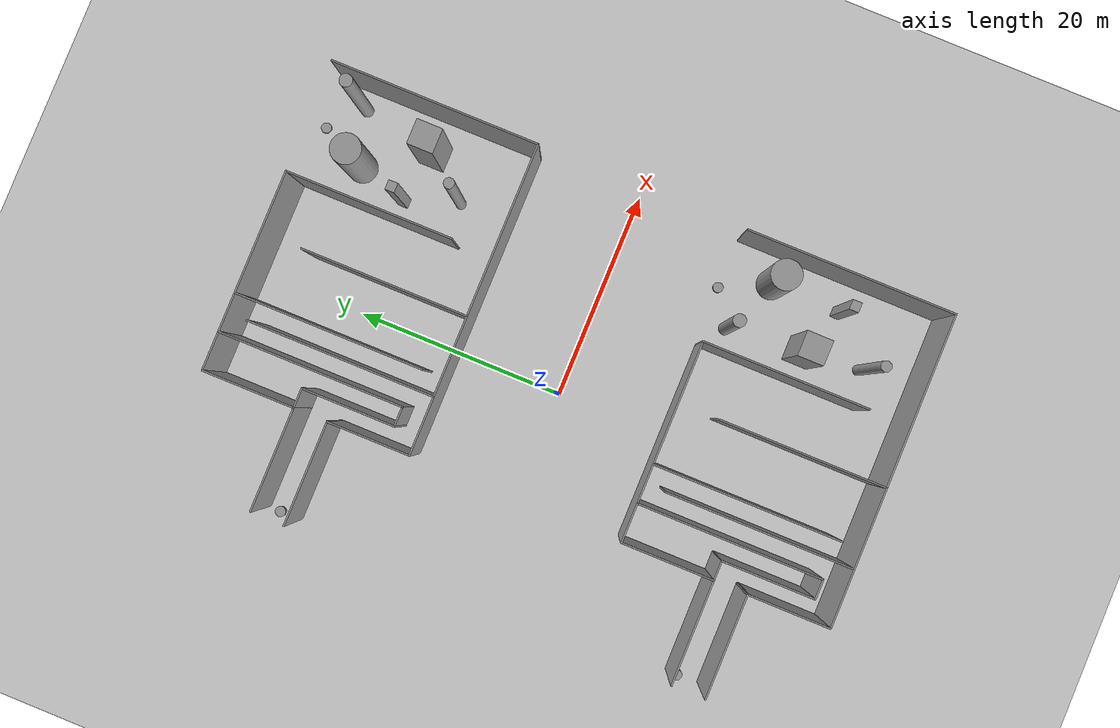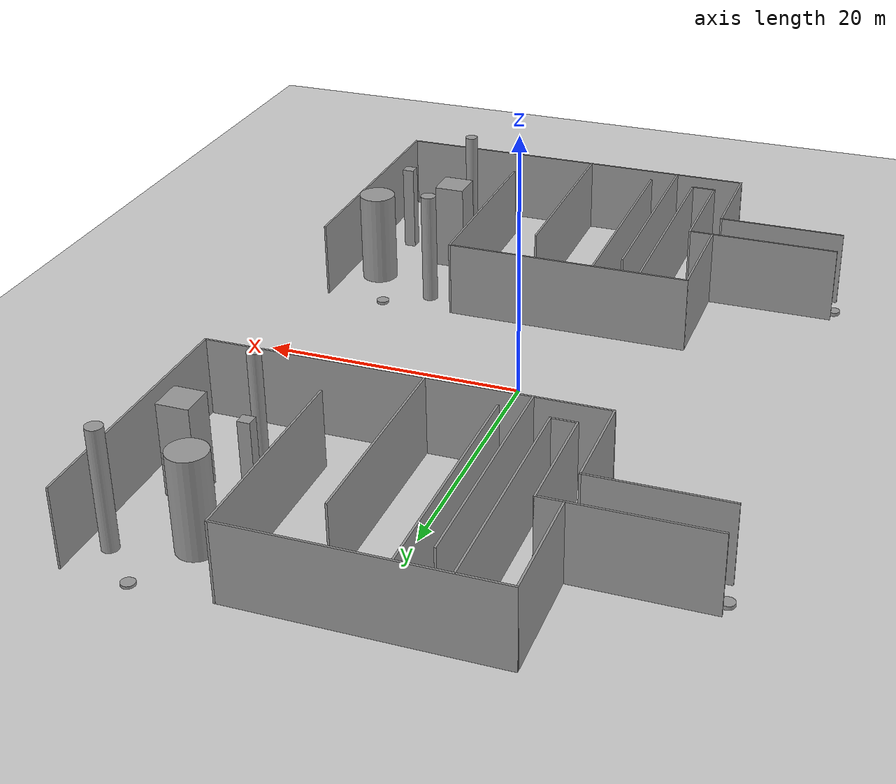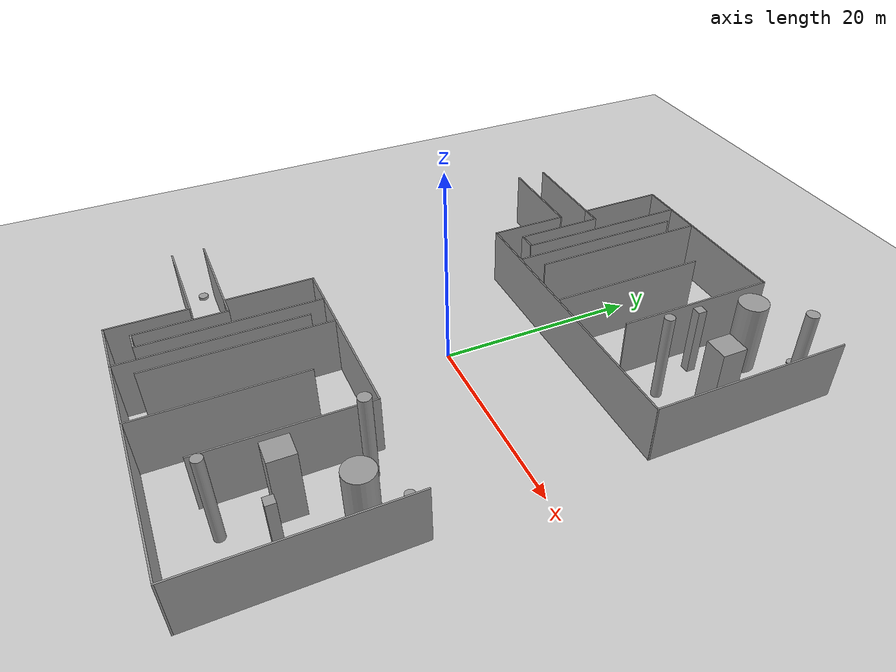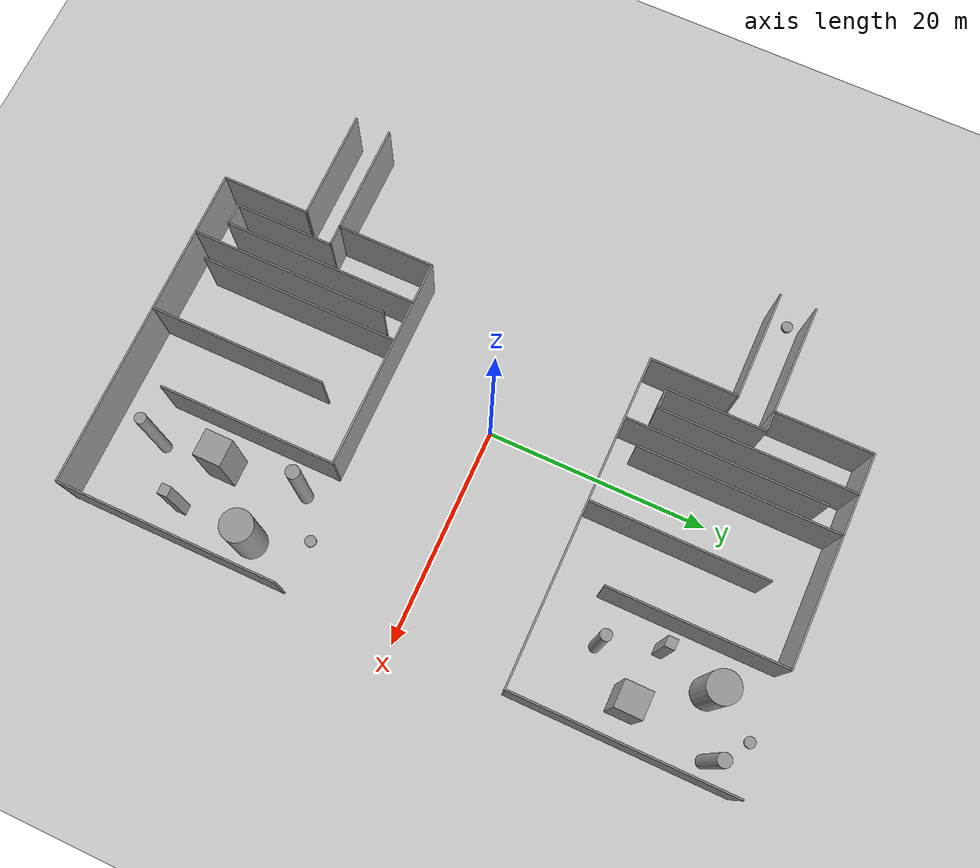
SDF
<sdf version="1.6">
 <world name="default">
  <light name="sun" type="directional">
   <pose>0 0 10 0 -0 0</pose>
   <diffuse>0.8 0.8 0.8 1</diffuse>
   <specular>0.2 0.2 0.2 1</specular>
   <attenuation>
    <range>1000</range>
    <constant>0.9</constant>
    <linear>0.01</linear>
    <quadratic>0.001</quadratic>
   </attenuation>
   <direction>-0.5 0.1 -0.9</direction>
  </light>
  <model name="ground_plane">
   <static>1</static>
   <link name="link">
    <collision name="collision">
     <geometry><plane><normal>0 0 1</normal><size>100 100</size></plane></geometry>
     <surface>
      <contact><collide_bitmask>65535</collide_bitmask></contact>
      <friction><ode><mu>100</mu><mu2>50</mu2></ode></friction>
     </surface>
    </collision>
    <visual name="visual">
     <cast_shadows>0</cast_shadows>
     <geometry><plane><normal>0 0 1</normal><size>100 100</size></plane></geometry>
     <material>
      <script><uri>file://media/materials/scripts/gazebo.material</uri><name>Gazebo/Grey</name></script>
     </material>
    </visual>
   </link>
  </model>
  <gravity>0 0 -9.8</gravity>
  <magnetic_field>6e-06 2.3e-05 -4.2e-05</magnetic_field>
  <atmosphere type="adiabatic"/>
  <physics name="default_physics" default="0" type="ode">
   <max_step_size>0.001</max_step_size>
   <real_time_factor>1</real_time_factor>
   <real_time_update_rate>1000</real_time_update_rate>
  </physics>
  <scene><ambient>0.4 0.4 0.4 1</ambient><background>0.7 0.7 0.7 1</background><shadows>1</shadows></scene>
  <spherical_coordinates>
   <surface_model>EARTH_WGS84</surface_model>
   <latitude_deg>0</latitude_deg>
   <longitude_deg>0</longitude_deg>
   <elevation>0</elevation>
   <heading_deg>0</heading_deg>
  </spherical_coordinates>
  <model name="train_1_1_clone">
   <pose>0 -20 0 0 -0 0</pose>
   <link name="Wall_58">
    <collision name="Wall_58_Collision">
     <geometry><box><size>10 0.15 6</size></box></geometry>
     <pose>0 0 3 0 -0 0</pose>
    </collision>
    <visual name="Wall_58_Visual">
     <pose>0 0 3 0 -0 0</pose>
     <geometry><box><size>10 0.15 6</size></box></geometry>
     <material>
      <script><uri>file://media/materials/scripts/gazebo.material</uri><name>Gazebo/Grey</name></script>
      <ambient>1 1 1 1</ambient>
     </material>
     <meta><layer>0</layer></meta>
    </visual>
    <pose>-14.911 1.131 0 0 -0 0</pose>
   </link>
   <link name="Wall_59">
    <collision name="Wall_59_Collision">
     <geometry><box><size>8.90242 0.15 6</size></box></geometry>
     <pose>0 0 3 0 -0 0</pose>
    </collision>
    <visual name="Wall_59_Visual">
     <pose>0 0 3 0 -0 0</pose>
     <geometry><box><size>8.90242 0.15 6</size></box></geometry>
     <material>
      <script><uri>file://media/materials/scripts/gazebo.material</uri><name>Gazebo/Grey</name></script>
      <ambient>1 1 1 1</ambient>
     </material>
     <meta><layer>0</layer></meta>
    </visual>
    <pose>-9.993 5.5075 0 0 -0 1.5724</pose>
   </link>
   <link name="Wall_62">
    <collision name="Wall_62_Collision">
     <geometry><box><size>20 0.15 6</size></box></geometry>
     <pose>0 0 3 0 -0 0</pose>
    </collision>
    <visual name="Wall_62_Visual">
     <pose>0 0 3 0 -0 0</pose>
     <geometry><box><size>20 0.15 6</size></box></geometry>
     <material>
      <script><uri>file://media/materials/scripts/gazebo.material</uri><name>Gazebo/Grey</name></script>
      <ambient>1 1 1 1</ambient>
     </material>
     <meta><layer>0</layer></meta>
    </visual>
    <pose>19.85 0 0 0 0 -1.5708</pose>
   </link>
   <link name="Wall_64">
    <collision name="Wall_64_Collision">
     <geometry><box><size>8 0.15 6</size></box></geometry>
     <pose>0 0 3 0 -0 0</pose>
    </collision>
    <visual name="Wall_64_Visual">
     <pose>0 0 3 0 -0 0</pose>
     <geometry><box><size>8 0.15 6</size></box></geometry>
     <material>
      <script><uri>file://media/materials/scripts/gazebo.material</uri><name>Gazebo/Grey</name></script>
      <ambient>1 1 1 1</ambient>
     </material>
     <meta><layer>0</layer></meta>
    </visual>
    <pose>-10 -6 0 0 -0 1.5708</pose>
   </link>
   <link name="Wall_65">
    <collision name="Wall_65_Collision">
     <geometry><box><size>10 0.15 6</size></box></geometry>
     <pose>0 0 3 0 -0 0</pose>
    </collision>
    <visual name="Wall_65_Visual">
     <pose>0 0 3 0 -0 0</pose>
     <geometry><box><size>10 0.15 6</size></box></geometry>
     <material>
      <script><uri>file://media/materials/scripts/gazebo.material</uri><name>Gazebo/Grey</name></script>
      <ambient>1 1 1 1</ambient>
     </material>
     <meta><layer>0</layer></meta>
    </visual>
    <pose>-14.925 -2.075 0 0 -0 3.14159</pose>
   </link>
   <link name="Wall_67">
    <collision name="Wall_67_Collision">
     <geometry><box><size>30 0.15 6</size></box></geometry>
     <pose>0 0 3 0 -0 0</pose>
    </collision>
    <visual name="Wall_67_Visual">
     <pose>0 0 3 0 -0 0</pose>
     <geometry><box><size>30 0.15 6</size></box></geometry>
     <material>
      <script><uri>file://media/materials/scripts/gazebo.material</uri><name>Gazebo/Grey</name></script>
      <ambient>1 1 1 1</ambient>
     </material>
     <meta><layer>0</layer></meta>
    </visual>
    <pose>4.925 -9.925 0 0 -0 0</pose>
   </link>
   <link name="Wall_70">
    <collision name="Wall_70_Collision">
     <geometry><box><size>2 0.15 6</size></box></geometry>
     <pose>0 0 3 0 -0 0</pose>
    </collision>
    <visual name="Wall_70_Visual">
     <pose>0 0 3 0 -0 0</pose>
     <geometry><box><size>2 0.15 6</size></box></geometry>
     <material>
      <script><uri>file://media/materials/scripts/gazebo.material</uri><name>Gazebo/Grey</name></script>
      <ambient>1 1 1 1</ambient>
     </material>
     <meta><layer>0</layer></meta>
    </visual>
    <pose>-9.061 1.131 0 0 -0 0</pose>
   </link>
   <link name="Wall_71">
    <collision name="Wall_71_Collision">
     <geometry><box><size>9 0.15 6</size></box></geometry>
     <pose>0 0 3 0 -0 0</pose>
    </collision>
    <visual name="Wall_71_Visual">
     <pose>0 0 3 0 -0 0</pose>
     <geometry><box><size>9 0.15 6</size></box></geometry>
     <material>
      <script><uri>file://media/materials/scripts/gazebo.material</uri><name>Gazebo/Grey</name></script>
      <ambient>1 1 1 1</ambient>
     </material>
     <meta><layer>0</layer></meta>
    </visual>
    <pose>-8.136 -3.294 0 0 0 -1.5708</pose>
   </link>
   <link name="Wall_72">
    <collision name="Wall_72_Collision">
     <geometry><box><size>2 0.15 6</size></box></geometry>
     <pose>0 0 3 0 -0 0</pose>
    </collision>
    <visual name="Wall_72_Visual">
     <pose>0 0 3 0 -0 0</pose>
     <geometry><box><size>2 0.15 6</size></box></geometry>
     <material>
      <script><uri>file://media/materials/scripts/gazebo.material</uri><name>Gazebo/Grey</name></script>
      <ambient>1 1 1 1</ambient>
     </material>
     <meta><layer>0</layer></meta>
    </visual>
    <pose>-7.211 -7.719 0 0 -0 0</pose>
   </link>
   <link name="Wall_73">
    <collision name="Wall_73_Collision">
     <geometry><box><size>17.75 0.15 6</size></box></geometry>
     <pose>0 0 3 0 -0 0</pose>
    </collision>
    <visual name="Wall_73_Visual">
     <pose>0 0 3 0 -0 0</pose>
     <geometry><box><size>17.75 0.15 6</size></box></geometry>
     <material>
      <script><uri>file://media/materials/scripts/gazebo.material</uri><name>Gazebo/Grey</name></script>
      <ambient>1 1 1 1</ambient>
     </material>
     <meta><layer>0</layer></meta>
    </visual>
    <pose>-6.286 1.081 0 0 -0 1.5708</pose>
   </link>
   <link name="Wall_76">
    <collision name="Wall_76_Collision">
     <geometry><box><size>18 0.15 6</size></box></geometry>
     <pose>0 0 3 0 -0 0</pose>
    </collision>
    <visual name="Wall_76_Visual">
     <pose>0 0 3 0 -0 0</pose>
     <geometry><box><size>18 0.15 6</size></box></geometry>
     <material>
      <script><uri>file://media/materials/scripts/gazebo.material</uri><name>Gazebo/Grey</name></script>
      <ambient>1 1 1 1</ambient>
     </material>
     <meta><layer>0</layer></meta>
    </visual>
    <pose>-4.415 -0.983 0 0 0 -1.5708</pose>
   </link>
   <link name="Wall_79">
    <collision name="Wall_79_Collision">
     <geometry><box><size>18 0.15 6</size></box></geometry>
     <pose>0 0 3 0 -0 0</pose>
    </collision>
    <visual name="Wall_79_Visual">
     <pose>0 0 3 0 -0 0</pose>
     <geometry><box><size>18 0.15 6</size></box></geometry>
     <material>
      <script><uri>file://media/materials/scripts/gazebo.material</uri><name>Gazebo/Grey</name></script>
      <ambient>1 1 1 1</ambient>
     </material>
     <meta><layer>0</layer></meta>
    </visual>
    <pose>-2.565 0.867 0 0 -0 1.5708</pose>
   </link>
   <link name="Wall_82">
    <collision name="Wall_82_Collision">
     <geometry><box><size>16 0.15 6</size></box></geometry>
     <pose>0 0 3 0 -0 0</pose>
    </collision>
    <visual name="Wall_82_Visual">
     <pose>0 0 3 0 -0 0</pose>
     <geometry><box><size>16 0.15 6</size></box></geometry>
     <material>
      <script><uri>file://media/materials/scripts/gazebo.material</uri><name>Gazebo/Grey</name></script>
      <ambient>1 1 1 1</ambient>
     </material>
     <meta><layer>0</layer></meta>
    </visual>
    <pose>3.285 -1.983 0 0 0 -1.5708</pose>
   </link>
   <link name="Wall_85">
    <collision name="Wall_85_Collision">
     <geometry><box><size>16 0.15 6</size></box></geometry>
     <pose>0 0 3 0 -0 0</pose>
    </collision>
    <visual name="Wall_85_Visual">
     <pose>0 0 3 0 -0 0</pose>
     <geometry><box><size>16 0.15 6</size></box></geometry>
     <material>
      <script><uri>file://media/materials/scripts/gazebo.material</uri><name>Gazebo/Grey</name></script>
      <ambient>1 1 1 1</ambient>
     </material>
     <meta><layer>0</layer></meta>
    </visual>
    <pose>9.15 1.96 0 0 -0 1.5708</pose>
   </link>
   <link name="Wall_87">
    <collision name="Wall_87_Collision">
     <geometry><box><size>19.25 0.15 6</size></box></geometry>
     <pose>0 0 3 0 -0 0</pose>
    </collision>
    <visual name="Wall_87_Visual">
     <pose>0 0 3 0 -0 0</pose>
     <geometry><box><size>19.25 0.15 6</size></box></geometry>
     <material>
      <script><uri>file://media/materials/scripts/gazebo.material</uri><name>Gazebo/Grey</name></script>
      <ambient>1 1 1 1</ambient>
     </material>
     <meta><layer>0</layer></meta>
    </visual>
    <pose>-0.45 9.884 0 0 -0 0</pose>
   </link>
   <static>1</static>
  </model>
  <model name="train_1_1_clone_clone">
   <pose>0 20 0 0 -0 0</pose>
   <link name="Wall_58">
    <collision name="Wall_58_Collision">
     <geometry><box><size>10 0.15 6</size></box></geometry>
     <pose>0 0 3 0 -0 0</pose>
    </collision>
    <visual name="Wall_58_Visual">
     <pose>0 0 3 0 -0 0</pose>
     <geometry><box><size>10 0.15 6</size></box></geometry>
     <material>
      <script><uri>file://media/materials/scripts/gazebo.material</uri><name>Gazebo/Grey</name></script>
      <ambient>1 1 1 1</ambient>
     </material>
     <meta><layer>0</layer></meta>
    </visual>
    <pose>-14.911 1.131 0 0 -0 0</pose>
   </link>
   <link name="Wall_59">
    <collision name="Wall_59_Collision">
     <geometry><box><size>8.90242 0.15 6</size></box></geometry>
     <pose>0 0 3 0 -0 0</pose>
    </collision>
    <visual name="Wall_59_Visual">
     <pose>0 0 3 0 -0 0</pose>
     <geometry><box><size>8.90242 0.15 6</size></box></geometry>
     <material>
      <script><uri>file://media/materials/scripts/gazebo.material</uri><name>Gazebo/Grey</name></script>
      <ambient>1 1 1 1</ambient>
     </material>
     <meta><layer>0</layer></meta>
    </visual>
    <pose>-9.993 5.5075 0 0 -0 1.5724</pose>
   </link>
   <link name="Wall_62">
    <collision name="Wall_62_Collision">
     <geometry><box><size>20 0.15 6</size></box></geometry>
     <pose>0 0 3 0 -0 0</pose>
    </collision>
    <visual name="Wall_62_Visual">
     <pose>0 0 3 0 -0 0</pose>
     <geometry><box><size>20 0.15 6</size></box></geometry>
     <material>
      <script><uri>file://media/materials/scripts/gazebo.material</uri><name>Gazebo/Grey</name></script>
      <ambient>1 1 1 1</ambient>
     </material>
     <meta><layer>0</layer></meta>
    </visual>
    <pose>19.85 0 0 0 0 -1.5708</pose>
   </link>
   <link name="Wall_64">
    <collision name="Wall_64_Collision">
     <geometry><box><size>8 0.15 6</size></box></geometry>
     <pose>0 0 3 0 -0 0</pose>
    </collision>
    <visual name="Wall_64_Visual">
     <pose>0 0 3 0 -0 0</pose>
     <geometry><box><size>8 0.15 6</size></box></geometry>
     <material>
      <script><uri>file://media/materials/scripts/gazebo.material</uri><name>Gazebo/Grey</name></script>
      <ambient>1 1 1 1</ambient>
     </material>
     <meta><layer>0</layer></meta>
    </visual>
    <pose>-10 -6 0 0 -0 1.5708</pose>
   </link>
   <link name="Wall_65">
    <collision name="Wall_65_Collision">
     <geometry><box><size>10 0.15 6</size></box></geometry>
     <pose>0 0 3 0 -0 0</pose>
    </collision>
    <visual name="Wall_65_Visual">
     <pose>0 0 3 0 -0 0</pose>
     <geometry><box><size>10 0.15 6</size></box></geometry>
     <material>
      <script><uri>file://media/materials/scripts/gazebo.material</uri><name>Gazebo/Grey</name></script>
      <ambient>1 1 1 1</ambient>
     </material>
     <meta><layer>0</layer></meta>
    </visual>
    <pose>-14.925 -2.075 0 0 -0 3.14159</pose>
   </link>
   <link name="Wall_67">
    <collision name="Wall_67_Collision">
     <geometry><box><size>30 0.15 6</size></box></geometry>
     <pose>0 0 3 0 -0 0</pose>
    </collision>
    <visual name="Wall_67_Visual">
     <pose>0 0 3 0 -0 0</pose>
     <geometry><box><size>30 0.15 6</size></box></geometry>
     <material>
      <script><uri>file://media/materials/scripts/gazebo.material</uri><name>Gazebo/Grey</name></script>
      <ambient>1 1 1 1</ambient>
     </material>
     <meta><layer>0</layer></meta>
    </visual>
    <pose>4.925 -9.925 0 0 -0 0</pose>
   </link>
   <link name="Wall_70">
    <collision name="Wall_70_Collision">
     <geometry><box><size>2 0.15 6</size></box></geometry>
     <pose>0 0 3 0 -0 0</pose>
    </collision>
    <visual name="Wall_70_Visual">
     <pose>0 0 3 0 -0 0</pose>
     <geometry><box><size>2 0.15 6</size></box></geometry>
     <material>
      <script><uri>file://media/materials/scripts/gazebo.material</uri><name>Gazebo/Grey</name></script>
      <ambient>1 1 1 1</ambient>
     </material>
     <meta><layer>0</layer></meta>
    </visual>
    <pose>-9.061 1.131 0 0 -0 0</pose>
   </link>
   <link name="Wall_71">
    <collision name="Wall_71_Collision">
     <geometry><box><size>9 0.15 6</size></box></geometry>
     <pose>0 0 3 0 -0 0</pose>
    </collision>
    <visual name="Wall_71_Visual">
     <pose>0 0 3 0 -0 0</pose>
     <geometry><box><size>9 0.15 6</size></box></geometry>
     <material>
      <script><uri>file://media/materials/scripts/gazebo.material</uri><name>Gazebo/Grey</name></script>
      <ambient>1 1 1 1</ambient>
     </material>
     <meta><layer>0</layer></meta>
    </visual>
    <pose>-8.136 -3.294 0 0 0 -1.5708</pose>
   </link>
   <link name="Wall_72">
    <collision name="Wall_72_Collision">
     <geometry><box><size>2 0.15 6</size></box></geometry>
     <pose>0 0 3 0 -0 0</pose>
    </collision>
    <visual name="Wall_72_Visual">
     <pose>0 0 3 0 -0 0</pose>
     <geometry><box><size>2 0.15 6</size></box></geometry>
     <material>
      <script><uri>file://media/materials/scripts/gazebo.material</uri><name>Gazebo/Grey</name></script>
      <ambient>1 1 1 1</ambient>
     </material>
     <meta><layer>0</layer></meta>
    </visual>
    <pose>-7.211 -7.719 0 0 -0 0</pose>
   </link>
   <link name="Wall_73">
    <collision name="Wall_73_Collision">
     <geometry><box><size>17.75 0.15 6</size></box></geometry>
     <pose>0 0 3 0 -0 0</pose>
    </collision>
    <visual name="Wall_73_Visual">
     <pose>0 0 3 0 -0 0</pose>
     <geometry><box><size>17.75 0.15 6</size></box></geometry>
     <material>
      <script><uri>file://media/materials/scripts/gazebo.material</uri><name>Gazebo/Grey</name></script>
      <ambient>1 1 1 1</ambient>
     </material>
     <meta><layer>0</layer></meta>
    </visual>
    <pose>-6.286 1.081 0 0 -0 1.5708</pose>
   </link>
   <link name="Wall_76">
    <collision name="Wall_76_Collision">
     <geometry><box><size>18 0.15 6</size></box></geometry>
     <pose>0 0 3 0 -0 0</pose>
    </collision>
    <visual name="Wall_76_Visual">
     <pose>0 0 3 0 -0 0</pose>
     <geometry><box><size>18 0.15 6</size></box></geometry>
     <material>
      <script><uri>file://media/materials/scripts/gazebo.material</uri><name>Gazebo/Grey</name></script>
      <ambient>1 1 1 1</ambient>
     </material>
     <meta><layer>0</layer></meta>
    </visual>
    <pose>-4.415 -0.983 0 0 0 -1.5708</pose>
   </link>
   <link name="Wall_79">
    <collision name="Wall_79_Collision">
     <geometry><box><size>18 0.15 6</size></box></geometry>
     <pose>0 0 3 0 -0 0</pose>
    </collision>
    <visual name="Wall_79_Visual">
     <pose>0 0 3 0 -0 0</pose>
     <geometry><box><size>18 0.15 6</size></box></geometry>
     <material>
      <script><uri>file://media/materials/scripts/gazebo.material</uri><name>Gazebo/Grey</name></script>
      <ambient>1 1 1 1</ambient>
     </material>
     <meta><layer>0</layer></meta>
    </visual>
    <pose>-2.565 0.867 0 0 -0 1.5708</pose>
   </link>
   <link name="Wall_82">
    <collision name="Wall_82_Collision">
     <geometry><box><size>16 0.15 6</size></box></geometry>
     <pose>0 0 3 0 -0 0</pose>
    </collision>
    <visual name="Wall_82_Visual">
     <pose>0 0 3 0 -0 0</pose>
     <geometry><box><size>16 0.15 6</size></box></geometry>
     <material>
      <script><uri>file://media/materials/scripts/gazebo.material</uri><name>Gazebo/Grey</name></script>
      <ambient>1 1 1 1</ambient>
     </material>
     <meta><layer>0</layer></meta>
    </visual>
    <pose>3.285 -1.983 0 0 0 -1.5708</pose>
   </link>
   <link name="Wall_85">
    <collision name="Wall_85_Collision">
     <geometry><box><size>16 0.15 6</size></box></geometry>
     <pose>0 0 3 0 -0 0</pose>
    </collision>
    <visual name="Wall_85_Visual">
     <pose>0 0 3 0 -0 0</pose>
     <geometry><box><size>16 0.15 6</size></box></geometry>
     <material>
      <script><uri>file://media/materials/scripts/gazebo.material</uri><name>Gazebo/Grey</name></script>
      <ambient>1 1 1 1</ambient>
     </material>
     <meta><layer>0</layer></meta>
    </visual>
    <pose>9.15 1.96 0 0 -0 1.5708</pose>
   </link>
   <link name="Wall_87">
    <collision name="Wall_87_Collision">
     <geometry><box><size>19.25 0.15 6</size></box></geometry>
     <pose>0 0 3 0 -0 0</pose>
    </collision>
    <visual name="Wall_87_Visual">
     <pose>0 0 3 0 -0 0</pose>
     <geometry><box><size>19.25 0.15 6</size></box></geometry>
     <material>
      <script><uri>file://media/materials/scripts/gazebo.material</uri><name>Gazebo/Grey</name></script>
      <ambient>1 1 1 1</ambient>
     </material>
     <meta><layer>0</layer></meta>
    </visual>
    <pose>-0.45 9.884 0 0 -0 0</pose>
   </link>
   <static>1</static>
  </model>
  <model name="unit_cylinder">
   <pose>-20 20 0.142952 0 -0 0</pose>
   <link name="link">
    <inertial>
     <mass>1</mass>
     <inertia><ixx>0.145833</ixx><ixy>0</ixy><ixz>0</ixz><iyy>0.145833</iyy><iyz>0</iyz><izz>0.125</izz></inertia>
    </inertial>
    <collision name="collision">
     <geometry><cylinder><radius>0.5</radius><length>0.285904</length></cylinder></geometry>
    </collision>
    <visual name="visual">
     <geometry><cylinder><radius>0.5</radius><length>0.285904</length></cylinder></geometry>
     <material>
      <script><name>Gazebo/Grey</name><uri>file://media/materials/scripts/gazebo.material</uri></script>
     </material>
    </visual>
   </link>
  </model>
  <model name="unit_cylinder_clone">
   <pose>-20 -20 0.148704 0 -0 0</pose>
   <link name="link">
    <inertial>
     <mass>1</mass>
     <inertia><ixx>0.145833</ixx><ixy>0</ixy><ixz>0</ixz><iyy>0.145833</iyy><iyz>0</iyz><izz>0.125</izz></inertia>
    </inertial>
    <collision name="collision">
     <geometry><cylinder><radius>0.5</radius><length>0.297409</length></cylinder></geometry>
    </collision>
    <visual name="visual">
     <geometry><cylinder><radius>0.5</radius><length>0.297409</length></cylinder></geometry>
     <material>
      <script><name>Gazebo/Grey</name><uri>file://media/materials/scripts/gazebo.material</uri></script>
     </material>
    </visual>
   </link>
  </model>
  <model name="unit_cylinder_clone_clone">
   <pose>15 -10 0.115078 0 -0 0</pose>
   <link name="link">
    <inertial>
     <mass>1</mass>
     <inertia><ixx>0.145833</ixx><ixy>0</ixy><ixz>0</ixz><iyy>0.145833</iyy><iyz>0</iyz><izz>0.125</izz></inertia>
    </inertial>
    <collision name="collision">
     <geometry><cylinder><radius>0.5</radius><length>0.230156</length></cylinder></geometry>
    </collision>
    <visual name="visual">
     <geometry><cylinder><radius>0.5</radius><length>0.230156</length></cylinder></geometry>
     <material>
      <script><name>Gazebo/Grey</name><uri>file://media/materials/scripts/gazebo.material</uri></script>
     </material>
    </visual>
   </link>
  </model>
  <model name="unit_cylinder_clone_clone_clone">
   <pose>15 30 0.098915 0 -0 0</pose>
   <link name="link">
    <inertial>
     <mass>1</mass>
     <inertia><ixx>0.145833</ixx><ixy>0</ixy><ixz>0</ixz><iyy>0.145833</iyy><iyz>0</iyz><izz>0.125</izz></inertia>
    </inertial>
    <collision name="collision">
     <geometry><cylinder><radius>0.5</radius><length>0.197849</length></cylinder></geometry>
    </collision>
    <visual name="visual">
     <geometry><cylinder><radius>0.5</radius><length>0.197849</length></cylinder></geometry>
     <material>
      <script><name>Gazebo/Grey</name><uri>file://media/materials/scripts/gazebo.material</uri></script>
     </material>
    </visual>
   </link>
  </model>
  <model name="unit_cylinder_0">
   <pose>12.7908 25.3361 3.67754 0 -0 0.031578</pose>
   <link name="link">
    <inertial>
     <mass>1</mass>
     <inertia><ixx>0.145833</ixx><ixy>0</ixy><ixz>0</ixz><iyy>0.145833</iyy><iyz>0</iyz><izz>0.125</izz></inertia>
    </inertial>
    <collision name="collision">
     <geometry><cylinder><radius>1.43548</radius><length>7.35509</length></cylinder></geometry>
    </collision>
    <visual name="visual">
     <geometry><cylinder><radius>1.43548</radius><length>7.35509</length></cylinder></geometry>
     <material>
      <script><name>Gazebo/Grey</name><uri>file://media/materials/scripts/gazebo.material</uri></script>
     </material>
    </visual>
   </link>
  </model>
  <model name="unit_box">
   <pose>16.494 19.4186 3.52391 0 -1e-06 -0.003937</pose>
   <link name="link">
    <inertial>
     <mass>1</mass>
     <inertia>
      <ixx>0.166667</ixx>
      <ixy>0</ixy>
      <ixz>0</ixz>
      <iyy>0.166667</iyy>
      <iyz>0</iyz>
      <izz>0.166667</izz>
     </inertia>
    </inertial>
    <collision name="collision"><geometry><box><size>2.40106 2.47842 7.04781</size></box></geometry></collision>
    <visual name="visual">
     <geometry><box><size>2.40106 2.47842 7.04781</size></box></geometry>
     <material>
      <script><name>Gazebo/Grey</name><uri>file://media/materials/scripts/gazebo.material</uri></script>
     </material>
    </visual>
   </link>
  </model>
  <model name="unit_cylinder_1">
   <pose>13.1442 15.4403 4.51403 0 -0 0.004413</pose>
   <link name="link">
    <inertial>
     <mass>1</mass>
     <inertia><ixx>0.145833</ixx><ixy>0</ixy><ixz>0</ixz><iyy>0.145833</iyy><iyz>0</iyz><izz>0.125</izz></inertia>
    </inertial>
    <collision name="collision">
     <geometry><cylinder><radius>0.5</radius><length>9.02806</length></cylinder></geometry>
    </collision>
    <visual name="visual">
     <geometry><cylinder><radius>0.5</radius><length>9.02806</length></cylinder></geometry>
     <material>
      <script><name>Gazebo/Grey</name><uri>file://media/materials/scripts/gazebo.material</uri></script>
     </material>
    </visual>
   </link>
  </model>
  <model name="unit_cylinder_1_clone">
   <pose>18.0105 27.0498 4.51403 0 0 -0.005875</pose>
   <link name="link">
    <inertial>
     <mass>1</mass>
     <inertia><ixx>0.145833</ixx><ixy>0</ixy><ixz>0</ixz><iyy>0.145833</iyy><iyz>0</iyz><izz>0.125</izz></inertia>
    </inertial>
    <collision name="collision">
     <geometry><cylinder><radius>0.604005</radius><length>9.02806</length></cylinder></geometry>
    </collision>
    <visual name="visual">
     <geometry><cylinder><radius>0.604005</radius><length>9.02806</length></cylinder></geometry>
     <material>
      <script><name>Gazebo/Grey</name><uri>file://media/materials/scripts/gazebo.material</uri></script>
     </material>
    </visual>
   </link>
  </model>
  <model name="unit_box_clone">
   <pose>11.2965 20.4208 3.52391 0 0 -0.00379</pose>
   <link name="link">
    <inertial>
     <mass>1</mass>
     <inertia>
      <ixx>0.166667</ixx>
      <ixy>0</ixy>
      <ixz>0</ixz>
      <iyy>0.166667</iyy>
      <iyz>0</iyz>
      <izz>0.166667</izz>
     </inertia>
    </inertial>
    <collision name="collision"><geometry><box><size>0.925317 0.883983 7.04781</size></box></geometry></collision>
    <visual name="visual">
     <geometry><box><size>0.925317 0.883983 7.04781</size></box></geometry>
     <material>
      <script><name>Gazebo/Grey</name><uri>file://media/materials/scripts/gazebo.material</uri></script>
     </material>
    </visual>
   </link>
  </model>
  <model name="unit_cylinder_0_clone">
   <pose>17.1564 -14.5516 3.67754 0 -0 0.031579</pose>
   <link name="link">
    <inertial>
     <mass>1</mass>
     <inertia><ixx>0.145833</ixx><ixy>0</ixy><ixz>0</ixz><iyy>0.145833</iyy><iyz>0</iyz><izz>0.125</izz></inertia>
    </inertial>
    <collision name="collision">
     <geometry><cylinder><radius>1.43548</radius><length>7.35509</length></cylinder></geometry>
    </collision>
    <visual name="visual">
     <geometry><cylinder><radius>1.43548</radius><length>7.35509</length></cylinder></geometry>
     <material>
      <script><name>Gazebo/Grey</name><uri>file://media/materials/scripts/gazebo.material</uri></script>
     </material>
    </visual>
   </link>
  </model>
  <model name="unit_cylinder_1_clone_0">
   <pose>12.7607 -25.1087 4.51403 0 -0 0.004381</pose>
   <link name="link">
    <inertial>
     <mass>1</mass>
     <inertia><ixx>0.145833</ixx><ixy>0</ixy><ixz>0</ixz><iyy>0.145833</iyy><iyz>0</iyz><izz>0.125</izz></inertia>
    </inertial>
    <collision name="collision">
     <geometry><cylinder><radius>0.5</radius><length>9.02806</length></cylinder></geometry>
    </collision>
    <visual name="visual">
     <geometry><cylinder><radius>0.5</radius><length>9.02806</length></cylinder></geometry>
     <material>
      <script><name>Gazebo/Grey</name><uri>file://media/materials/scripts/gazebo.material</uri></script>
     </material>
    </visual>
   </link>
  </model>
  <model name="unit_box_clone_0">
   <pose>12.2064 -19.3283 3.52391 1e-06 0 -0.003956</pose>
   <link name="link">
    <inertial>
     <mass>1</mass>
     <inertia>
      <ixx>0.166667</ixx>
      <ixy>0</ixy>
      <ixz>0</ixz>
      <iyy>0.166667</iyy>
      <iyz>0</iyz>
      <izz>0.166667</izz>
     </inertia>
    </inertial>
    <collision name="collision"><geometry><box><size>2.40107 2.47842 7.04781</size></box></geometry></collision>
    <visual name="visual">
     <geometry><box><size>2.40107 2.47842 7.04781</size></box></geometry>
     <material>
      <script><name>Gazebo/Grey</name><uri>file://media/materials/scripts/gazebo.material</uri></script>
     </material>
    </visual>
   </link>
  </model>
  <model name="unit_cylinder_1_clone_clone">
   <pose>11.6531 -12.0574 4.51402 0 0 -0.00588</pose>
   <link name="link">
    <inertial>
     <mass>1</mass>
     <inertia><ixx>0.145833</ixx><ixy>0</ixy><ixz>0</ixz><iyy>0.145833</iyy><iyz>0</iyz><izz>0.125</izz></inertia>
    </inertial>
    <collision name="collision">
     <geometry><cylinder><radius>0.604003</radius><length>9.02806</length></cylinder></geometry>
    </collision>
    <visual name="visual">
     <geometry><cylinder><radius>0.604003</radius><length>9.02806</length></cylinder></geometry>
     <material>
      <script><name>Gazebo/Grey</name><uri>file://media/materials/scripts/gazebo.material</uri></script>
     </material>
    </visual>
   </link>
  </model>
  <model name="unit_box_clone_clone">
   <pose>16.9585 -21.2072 3.52391 0 0 -0.003852</pose>
   <link name="link">
    <inertial>
     <mass>1</mass>
     <inertia>
      <ixx>0.166667</ixx>
      <ixy>0</ixy>
      <ixz>0</ixz>
      <iyy>0.166667</iyy>
      <iyz>0</iyz>
      <izz>0.166667</izz>
     </inertia>
    </inertial>
    <collision name="collision"><geometry><box><size>0.925317 0.883983 7.04781</size></box></geometry></collision>
    <visual name="visual">
     <geometry><box><size>0.925317 0.883983 7.04781</size></box></geometry>
     <material>
      <script><name>Gazebo/Grey</name><uri>file://media/materials/scripts/gazebo.material</uri></script>
     </material>
    </visual>
   </link>
  </model>
 </world>
</sdf>
